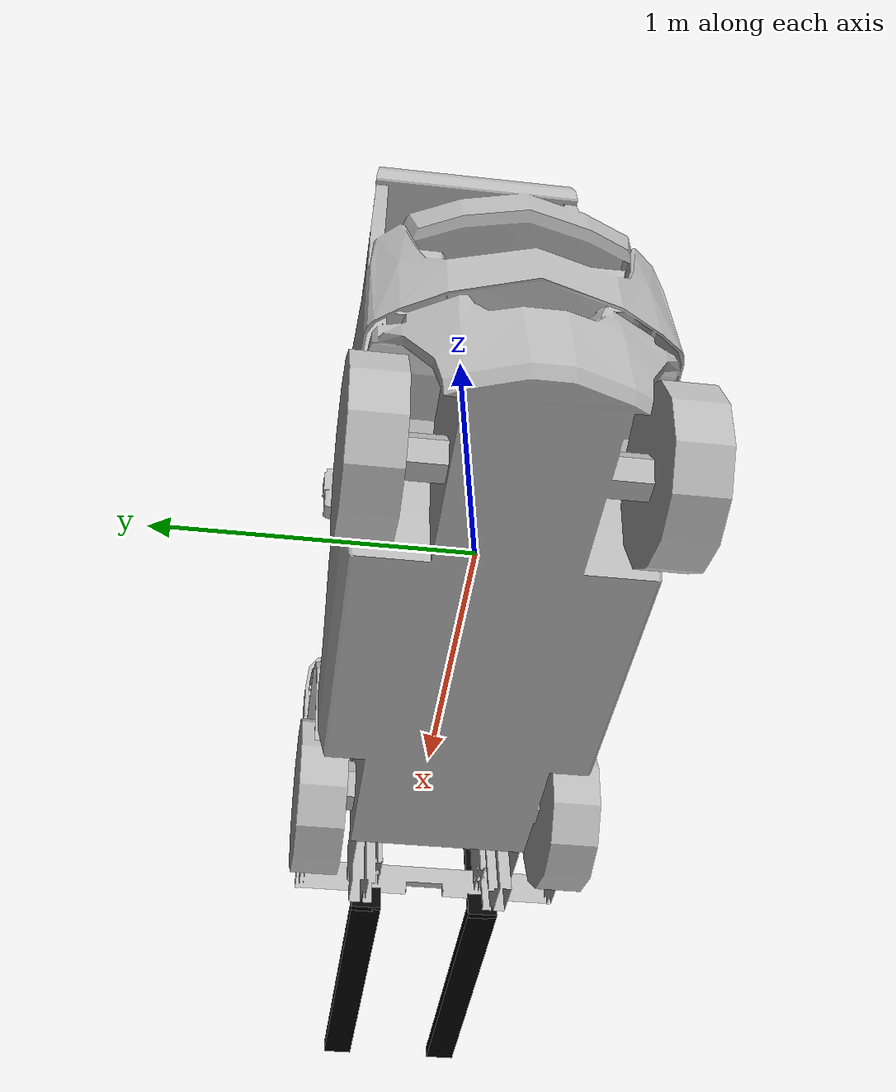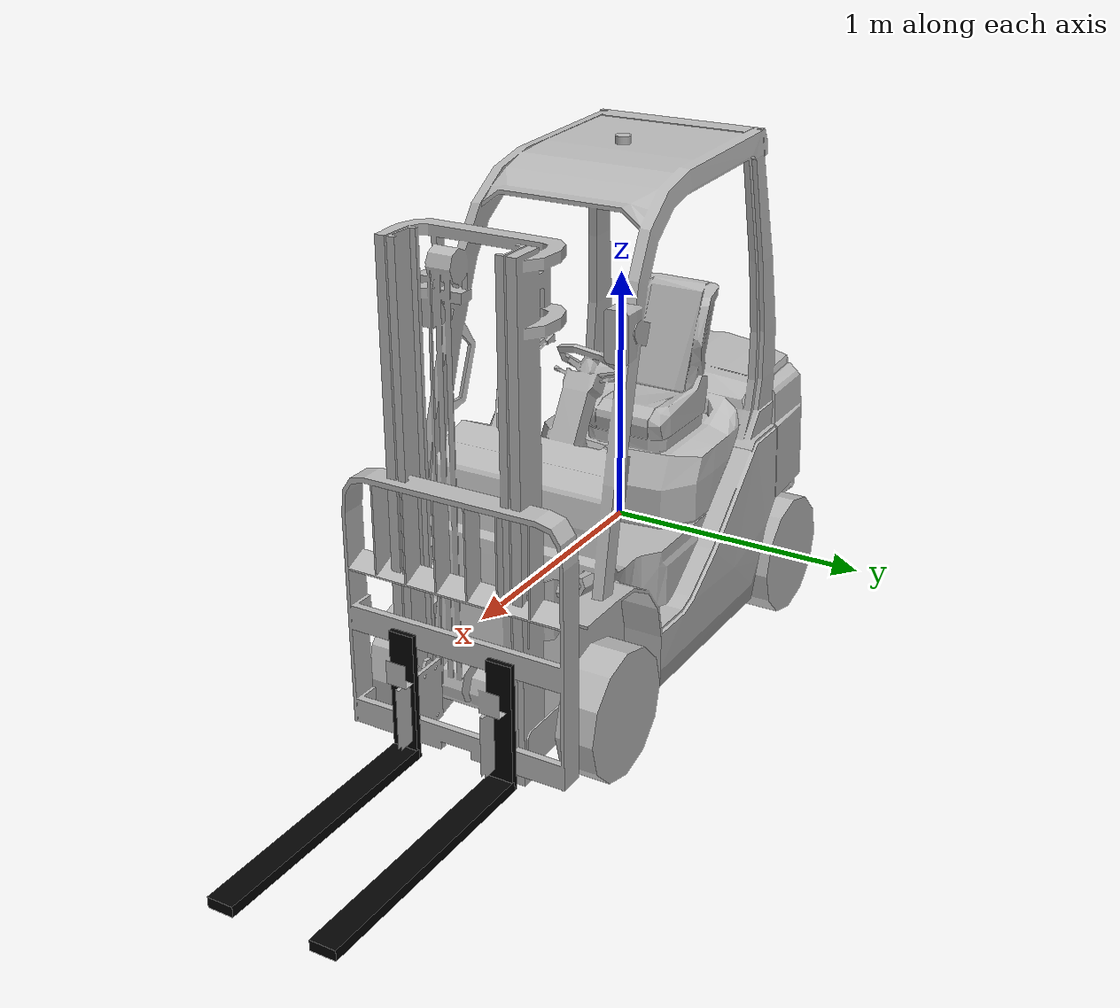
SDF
<sdf version='1.11'>
  <model name='forklift'>
    <link name='base_link'>
      <inertial>
        <pose>-0.10000000000000001 0 0 0 0 0</pose>
        <mass>50</mass>
        <inertia>
          <ixx>20.004270833333329</ixx>
          <ixy>0</ixy>
          <ixz>0</ixz>
          <iyy>38.517083333333318</iyy>
          <iyz>0</iyz>
          <izz>25.188020833333329</izz>
        </inertia>
      </inertial>
      <collision name='base_link_collision'>
        <pose>0 0 0 0 0 0</pose>
        <geometry>
          <mesh>
            <scale>1 1 1</scale>
            <uri>model://forklift_controller/models/forklift/meshes/body_correct_scale.dae</uri>
          </mesh>
        </geometry>
      </collision>
      <visual name='base_link_visual'>
        <pose>0 0 0 0 0 0</pose>
        <geometry>
          <mesh>
            <scale>1 1 1</scale>
            <uri>model://forklift_controller/models/forklift/meshes/body_correct_scale.dae</uri>
          </mesh>
        </geometry>
      </visual>
    </link>
    <joint name='fork_plate_joint' type='prismatic'>
      <pose relative_to='base_link'>1.1499999999999999 0 0.089999999999999997 0 0 0</pose>
      <parent>base_link</parent>
      <child>fork_plate</child>
      <axis>
        <xyz>0 0 1</xyz>
        <limit>
          <lower>0</lower>
          <upper>5</upper>
          <effort>2500</effort>
          <velocity>0.5</velocity>
        </limit>
        <dynamics>
          <spring_reference>0</spring_reference>
          <spring_stiffness>0</spring_stiffness>
        </dynamics>
      </axis>
    </joint>
    <link name='fork_plate'>
      <pose relative_to='fork_plate_joint'>0 0 0 0 0 0</pose>
      <inertial>
        <pose>0.1125 0 -0.174375 0 0 0</pose>
        <mass>80</mass>
        <inertia>
          <ixx>15.875937499999999</ixx>
          <ixy>0</ixy>
          <ixz>3.478124999999999</ixz>
          <iyy>16.565885416666671</iyy>
          <iyz>0</iyz>
          <izz>9.6433854166666677</izz>
        </inertia>
      </inertial>
      <collision name='fork_plate_collision'>
        <pose>0 0 0 0 0 0</pose>
        <geometry>
          <box>
            <size>0.10000000000000001 0.88500000000000001 1.29</size>
          </box>
        </geometry>
        <surface>
          <contact>
            <ode/>
          </contact>
          <friction>
            <ode/>
          </friction>
        </surface>
      </collision>
      <collision name='fork_plate_fixed_joint_lump__fork_1_attach_collision_1'>
        <pose>0.050000000000000003 0.20000000000000001 -0.34999999999999998 1.570796326794897 1.5707963267948966 0</pose>
        <geometry>
          <box>
            <size>0.5 0.025000000000000001 0.10000000000000001</size>
          </box>
        </geometry>
      </collision>
      <collision name='fork_plate_fixed_joint_lump__fork_1_collision_2'>
        <pose>0.55000000000000004 0.20000000000000001 -0.57999999999999996 0 0 0</pose>
        <geometry>
          <box>
            <size>1 0.10000000000000001 0.040000000000000001</size>
          </box>
        </geometry>
      </collision>
      <collision name='fork_plate_fixed_joint_lump__fork_2_attach_collision_3'>
        <pose>0.050000000000000003 -0.20000000000000001 -0.34999999999999998 1.570796326794897 1.5707963267948966 0</pose>
        <geometry>
          <box>
            <size>0.5 0.025000000000000001 0.10000000000000001</size>
          </box>
        </geometry>
      </collision>
      <collision name='fork_plate_fixed_joint_lump__fork_2_collision_4'>
        <pose>0.55000000000000004 -0.20000000000000001 -0.57999999999999996 0 0 0</pose>
        <geometry>
          <box>
            <size>1 0.10000000000000001 0.040000000000000001</size>
          </box>
        </geometry>
      </collision>
      <visual name='fork_plate_visual'>
        <pose>0 0 0 0 0 0</pose>
        <geometry>
          <mesh>
            <scale>1 1 0.77000000000000002</scale>
            <uri>model://forklift_controller/models/forklift/meshes/fork_plate_correct_scale.dae</uri>
          </mesh>
        </geometry>
      </visual>
      <visual name='fork_plate_fixed_joint_lump__fork_1_attach_visual_1'>
        <pose>0.050000000000000003 0.20000000000000001 -0.34999999999999998 1.570796326794897 1.5707963267948966 0</pose>
        <geometry>
          <box>
            <size>0.5 0.025000000000000001 0.10000000000000001</size>
          </box>
        </geometry>
        <material>
          <diffuse>0.0125000002 0.0125000002 0.0125000002 1</diffuse>
          <ambient>0.0125000002 0.0125000002 0.0125000002 1</ambient>
        </material>
      </visual>
      <visual name='fork_plate_fixed_joint_lump__fork_1_visual_2'>
        <pose>0.55000000000000004 0.20000000000000001 -0.57999999999999996 0 0 0</pose>
        <geometry>
          <box>
            <size>1 0.10000000000000001 0.040000000000000001</size>
          </box>
        </geometry>
        <material>
          <diffuse>0.0125000002 0.0125000002 0.0125000002 1</diffuse>
          <ambient>0.0125000002 0.0125000002 0.0125000002 1</ambient>
        </material>
      </visual>
      <visual name='fork_plate_fixed_joint_lump__fork_2_attach_visual_3'>
        <pose>0.050000000000000003 -0.20000000000000001 -0.34999999999999998 1.570796326794897 1.5707963267948966 0</pose>
        <geometry>
          <box>
            <size>0.5 0.025000000000000001 0.10000000000000001</size>
          </box>
        </geometry>
        <material>
          <diffuse>0.0125000002 0.0125000002 0.0125000002 1</diffuse>
          <ambient>0.0125000002 0.0125000002 0.0125000002 1</ambient>
        </material>
      </visual>
      <visual name='fork_plate_fixed_joint_lump__fork_2_visual_4'>
        <pose>0.55000000000000004 -0.20000000000000001 -0.57999999999999996 0 0 0</pose>
        <geometry>
          <box>
            <size>1 0.10000000000000001 0.040000000000000001</size>
          </box>
        </geometry>
        <material>
          <diffuse>0.0125000002 0.0125000002 0.0125000002 1</diffuse>
          <ambient>0.0125000002 0.0125000002 0.0125000002 1</ambient>
        </material>
      </visual>
      <sensor name='sensor_contact' type='contact'>
        <contact>
          <collision>fork_plate_fixed_joint_lump__fork_1_collision_1</collision>
          <topic>__default_topic__</topic>
        </contact>
      </sensor>
    </link>
    <joint name='left_wheel_back_joint' type='revolute'>
      <pose relative_to='base_link'>-0.65000000000000002 0.40000000000000002 -0.34999999999999998 1.5707963267948959 0 0</pose>
      <parent>base_link</parent>
      <child>left_wheel_back</child>
      <axis>
        <xyz>0 0 -1</xyz>
        <limit>
          <lower>-inf</lower>
          <upper>inf</upper>
        </limit>
        <dynamics>
          <spring_reference>0</spring_reference>
          <spring_stiffness>0</spring_stiffness>
        </dynamics>
      </axis>
    </joint>
    <link name='left_wheel_back'>
      <pose relative_to='left_wheel_back_joint'>0 0 0 0 0 0</pose>
      <inertial>
        <pose>0 0 0 0 0 0</pose>
        <mass>5</mass>
        <inertia>
          <ixx>0.087499999999999994</ixx>
          <ixy>0</ixy>
          <ixz>0</ixz>
          <iyy>0.087499999999999994</iyy>
          <iyz>0</iyz>
          <izz>0.15625</izz>
        </inertia>
      </inertial>
      <collision name='left_wheel_back_collision'>
        <pose>0 0 0 0 0 0</pose>
        <geometry>
          <cylinder>
            <length>0.14999999999999999</length>
            <radius>0.25</radius>
          </cylinder>
        </geometry>
      </collision>
      <visual name='left_wheel_back_visual'>
        <pose>0 0 0 -1.5707963267948959 0 0</pose>
        <geometry>
          <mesh>
            <scale>1 1 1</scale>
            <uri>model://forklift_controller/models/forklift/meshes/wheel_correct_scale.dae</uri>
          </mesh>
        </geometry>
      </visual>
    </link>
    <joint name='left_wheel_joint' type='revolute'>
      <pose relative_to='base_link'>0.80000000000000004 0.40000000000000002 -0.34999999999999998 1.5707963267948959 0 0</pose>
      <parent>base_link</parent>
      <child>left_wheel</child>
      <axis>
        <xyz>0 0 -1</xyz>
        <limit>
          <lower>-inf</lower>
          <upper>inf</upper>
        </limit>
        <dynamics>
          <spring_reference>0</spring_reference>
          <spring_stiffness>0</spring_stiffness>
        </dynamics>
      </axis>
    </joint>
    <link name='left_wheel'>
      <pose relative_to='left_wheel_joint'>0 0 0 0 0 0</pose>
      <inertial>
        <pose>0 0 0 0 0 0</pose>
        <mass>5</mass>
        <inertia>
          <ixx>0.087499999999999994</ixx>
          <ixy>0</ixy>
          <ixz>0</ixz>
          <iyy>0.087499999999999994</iyy>
          <iyz>0</iyz>
          <izz>0.15625</izz>
        </inertia>
      </inertial>
      <collision name='left_wheel_collision'>
        <pose>0 0 0 0 0 0</pose>
        <geometry>
          <cylinder>
            <length>0.14999999999999999</length>
            <radius>0.25</radius>
          </cylinder>
        </geometry>
      </collision>
      <visual name='left_wheel_visual'>
        <pose>0 0 0 -1.5707963267948959 0 0</pose>
        <geometry>
          <mesh>
            <scale>1 1 1</scale>
            <uri>model://forklift_controller/models/forklift/meshes/wheel_correct_scale.dae</uri>
          </mesh>
        </geometry>
      </visual>
    </link>
    <joint name='right_wheel_back_joint' type='revolute'>
      <pose relative_to='base_link'>-0.65000000000000002 -0.40000000000000002 -0.34999999999999998 1.5707963267948959 0 0</pose>
      <parent>base_link</parent>
      <child>right_wheel_back</child>
      <axis>
        <xyz>0 0 -1</xyz>
        <limit>
          <lower>-inf</lower>
          <upper>inf</upper>
        </limit>
        <dynamics>
          <spring_reference>0</spring_reference>
          <spring_stiffness>0</spring_stiffness>
        </dynamics>
      </axis>
    </joint>
    <link name='right_wheel_back'>
      <pose relative_to='right_wheel_back_joint'>0 0 0 0 0 0</pose>
      <inertial>
        <pose>0 0 0 0 0 0</pose>
        <mass>5</mass>
        <inertia>
          <ixx>0.087499999999999994</ixx>
          <ixy>0</ixy>
          <ixz>0</ixz>
          <iyy>0.087499999999999994</iyy>
          <iyz>0</iyz>
          <izz>0.15625</izz>
        </inertia>
      </inertial>
      <collision name='right_wheel_back_collision'>
        <pose>0 0 0 0 0 0</pose>
        <geometry>
          <cylinder>
            <length>0.14999999999999999</length>
            <radius>0.25</radius>
          </cylinder>
        </geometry>
      </collision>
      <visual name='right_wheel_back_visual'>
        <pose>0 0 0 1.5707963267948959 0 0</pose>
        <geometry>
          <mesh>
            <scale>1 1 1</scale>
            <uri>model://forklift_controller/models/forklift/meshes/wheel_correct_scale.dae</uri>
          </mesh>
        </geometry>
      </visual>
    </link>
    <joint name='right_wheel_joint' type='revolute'>
      <pose relative_to='base_link'>0.80000000000000004 -0.40000000000000002 -0.34999999999999998 1.5707963267948959 0 0</pose>
      <parent>base_link</parent>
      <child>right_wheel</child>
      <axis>
        <xyz>0 0 -1</xyz>
        <limit>
          <lower>-inf</lower>
          <upper>inf</upper>
        </limit>
        <dynamics>
          <spring_reference>0</spring_reference>
          <spring_stiffness>0</spring_stiffness>
        </dynamics>
      </axis>
    </joint>
    <link name='right_wheel'>
      <pose relative_to='right_wheel_joint'>0 0 0 0 0 0</pose>
      <inertial>
        <pose>0 0 0 0 0 0</pose>
        <mass>5</mass>
        <inertia>
          <ixx>0.087499999999999994</ixx>
          <ixy>0</ixy>
          <ixz>0</ixz>
          <iyy>0.087499999999999994</iyy>
          <iyz>0</iyz>
          <izz>0.15625</izz>
        </inertia>
      </inertial>
      <collision name='right_wheel_collision'>
        <pose>0 0 0 0 0 0</pose>
        <geometry>
          <cylinder>
            <length>0.14999999999999999</length>
            <radius>0.25</radius>
          </cylinder>
        </geometry>
      </collision>
      <visual name='right_wheel_visual'>
        <pose>0 0 0 1.5707963267948959 0 0</pose>
        <geometry>
          <mesh>
            <scale>1 1 1</scale>
            <uri>model://forklift_controller/models/forklift/meshes/wheel_correct_scale.dae</uri>
          </mesh>
        </geometry>
      </visual>
    </link>
    <joint name='rplidar_joint' type='fixed'>
      <pose relative_to='base_link'>0 0 1.5 0 0 0</pose>
      <parent>base_link</parent>
      <child>rplidar_link</child>
      <axis>
        <dynamics>
          <spring_reference>0</spring_reference>
          <spring_stiffness>0</spring_stiffness>
        </dynamics>
        <xyz>0 0 1</xyz>
        <limit>
          <lower>-inf</lower>
          <upper>inf</upper>
        </limit>
      </axis>
      <physics>
        <ode>
          <limit>
            <cfm>0</cfm>
            <erp>0.20000000000000001</erp>
          </limit>
        </ode>
      </physics>
    </joint>
    <link name='rplidar_link'>
      <pose relative_to='rplidar_joint'>0 0 0 0 0 0</pose>
      <inertial>
        <pose>0 0 0 0 0 0</pose>
        <mass>0.10000000000000001</mass>
        <inertia>
          <ixx>3.0000000000000001e-05</ixx>
          <ixy>0</ixy>
          <ixz>0</ixz>
          <iyy>3.0000000000000001e-05</iyy>
          <iyz>0</iyz>
          <izz>4.5000000000000003e-05</izz>
        </inertia>
      </inertial>
      <collision name='rplidar_link_collision'>
        <pose>0 0 0 0 0 0</pose>
        <geometry>
          <cylinder>
            <length>0.029999999999999999</length>
            <radius>0.029999999999999999</radius>
          </cylinder>
        </geometry>
        <surface>
          <contact>
            <ode/>
          </contact>
          <friction>
            <ode/>
          </friction>
        </surface>
      </collision>
      <visual name='rplidar_link_visual'>
        <pose>0 0 0 0 0 0</pose>
        <geometry>
          <cylinder>
            <length>0.029999999999999999</length>
            <radius>0.029999999999999999</radius>
          </cylinder>
        </geometry>
      </visual>
      <sensor name='rplidar' type='gpu_lidar'>
        <update_rate>10</update_rate>
        <visualize>true</visualize>
        <always_on>true</always_on>
        <topic>/scan</topic>
        <lidar>
          <scan>
            <horizontal>
              <samples>360</samples>
              <resolution>1</resolution>
              <min_angle>0</min_angle>
              <max_angle>6.2800000000000002</max_angle>
            </horizontal>
          </scan>
          <range>
            <min>0.16400000000000001</min>
            <max>20</max>
            <resolution>0.01</resolution>
          </range>
        </lidar>
        <gz_frame_id>rplidar_link</gz_frame_id>
      </sensor>
    </link>
    <plugin name='gz::sim::systems::DiffDrive' filename='gz-sim-diff-drive-system'>
      <left_joint>left_wheel_joint</left_joint>
      <left_joint>left_wheel_back_joint</left_joint>
      <right_joint>right_wheel_joint</right_joint>
      <right_joint>right_wheel_back_joint</right_joint>
      <wheel_separation>0.890</wheel_separation>
      <wheel_radius>0.25</wheel_radius>
      <odom_publish_frequency>30</odom_publish_frequency>
      <odom_topic>/odom</odom_topic>
      <frame_id>odom</frame_id>
      <tf_topic>/tf</tf_topic>
      <topic>/cmd_vel</topic>
      <child_frame_id>base_link</child_frame_id>
      <max_linear_acceleration>10</max_linear_acceleration>
      <min_linear_acceleration>-10</min_linear_acceleration>
      <max_angular_acceleration>20</max_angular_acceleration>
      <min_angular_acceleration>-20</min_angular_acceleration>
      <max_linear_velocity>6</max_linear_velocity>
      <min_linear_velocity>-0.5</min_linear_velocity>
      <max_angular_velocity>10</max_angular_velocity>
      <min_angular_velocity>-10</min_angular_velocity>
    </plugin>
    <plugin name='gz::sim::systems::JointStatePublisher' filename='gz-sim-joint-state-publisher-system'>
      <topic>/joint_states</topic>
    </plugin>
    <plugin name='gz::sim::systems::JointPositionController' filename='gz-sim-joint-position-controller-system'>
      <joint_name>fork_plate_joint</joint_name>
      <initial_position>0.0</initial_position>
      <topic>/fork_control</topic>
      <p_gain>4000000</p_gain>
      <i_gain>2000</i_gain>
      <d_gain>5000</d_gain>
      <i_min>-2000</i_min>
      <i_max>2000</i_max>
      <cmd_min>-80000</cmd_min>
      <cmd_max>120000</cmd_max>
    </plugin>
    <frame name='base_link_joint' attached_to='base_link'>
      <pose>0 0 -0.59999999999999998 0 0 0</pose>
    </frame>
    <frame name='base_footprint' attached_to='base_link_joint'>
      <pose>0 0 0 0 0 0</pose>
    </frame>
    <frame name='fork_1_joint' attached_to='fork_1_attach'>
      <pose>0.5 0 -0.23000000000000001 0 0 0</pose>
    </frame>
    <frame name='fork_1' attached_to='fork_1_joint'>
      <pose>0 0 0 0 0 0</pose>
    </frame>
    <frame name='fork_attach_1_joint' attached_to='fork_plate'>
      <pose>0.050000000000000003 0.20000000000000001 -0.34999999999999998 0 0 0</pose>
    </frame>
    <frame name='fork_1_attach' attached_to='fork_attach_1_joint'>
      <pose>0 0 0 0 0 0</pose>
    </frame>
    <frame name='fork_2_joint' attached_to='fork_2_attach'>
      <pose>0.5 0 -0.23000000000000001 0 0 0</pose>
    </frame>
    <frame name='fork_2' attached_to='fork_2_joint'>
      <pose>0 0 0 0 0 0</pose>
    </frame>
    <frame name='fork_attach_2_joint' attached_to='fork_plate'>
      <pose>0.050000000000000003 -0.20000000000000001 -0.34999999999999998 0 0 0</pose>
    </frame>
    <frame name='fork_2_attach' attached_to='fork_attach_2_joint'>
      <pose>0 0 0 0 0 0</pose>
    </frame>
  </model>
</sdf>
